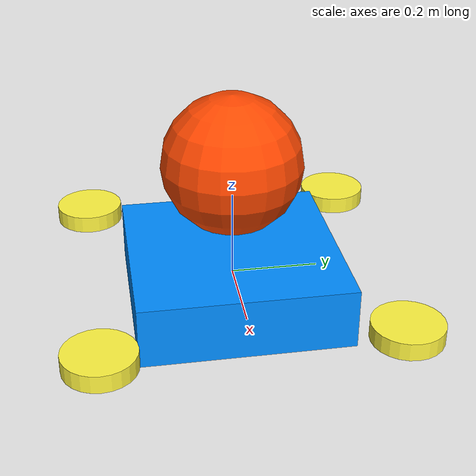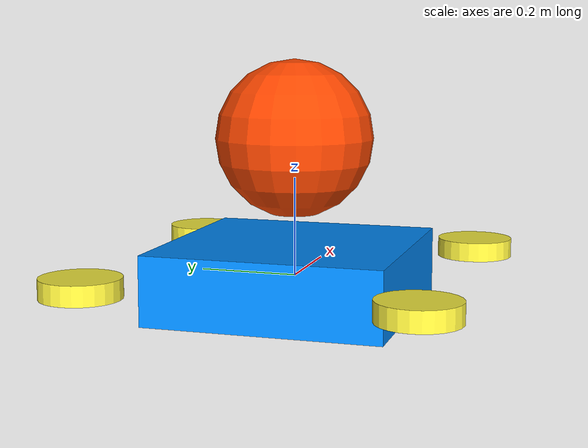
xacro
<?xml version="1.0"?>
<robot xmlns:xacro="http://www.ros.org/wiki/xacro" name="iris">
  <xacro:arg name="use_sim_time" default="true"/>
  <xacro:arg name="namespace" default="drone"/>

  <link name="base_link">
    <inertial>
      <origin xyz="0 0 0" rpy="0 0 0"/>
      <mass value="1.5"/>
      <inertia
        ixx="0.029125"
        ixy="0.0"
        ixz="0.0"
        iyy="0.029125"
        iyz="0.0"
        izz="0.055225"/>
    </inertial>
    <visual>
      <origin xyz="0 0 0" rpy="0 0 0"/>
      <geometry>
        <box size="0.48 0.48 0.14"/>
      </geometry>
      <material name="carbon">
        <color rgba="0.0 0.55 1.0 1.0"/>
      </material>
    </visual>
    <collision>
      <origin xyz="0 0 0" rpy="0 0 0"/>
      <geometry>
        <box size="0.48 0.48 0.14"/>
      </geometry>
    </collision>
  </link>

  <link name="front_left_motor">
    <visual>
      <origin xyz="0.32 0.32 0.02" rpy="0 0 0"/>
      <geometry>
        <cylinder radius="0.08" length="0.04"/>
      </geometry>
      <material name="motor">
        <color rgba="1.0 0.96 0.25 1.0"/>
      </material>
    </visual>
  </link>
  <joint name="front_left_motor_joint" type="fixed">
    <parent link="base_link"/>
    <child link="front_left_motor"/>
    <origin xyz="0 0 0" rpy="0 0 0"/>
  </joint>

  <link name="front_right_motor">
    <visual>
      <origin xyz="0.32 -0.32 0.02" rpy="0 0 0"/>
      <geometry>
        <cylinder radius="0.08" length="0.04"/>
      </geometry>
      <material name="motor">
        <color rgba="1.0 0.96 0.25 1.0"/>
      </material>
    </visual>
  </link>
  <joint name="front_right_motor_joint" type="fixed">
    <parent link="base_link"/>
    <child link="front_right_motor"/>
    <origin xyz="0 0 0" rpy="0 0 0"/>
  </joint>

  <link name="rear_left_motor">
    <visual>
      <origin xyz="-0.32 0.32 0.02" rpy="0 0 0"/>
      <geometry>
        <cylinder radius="0.08" length="0.04"/>
      </geometry>
      <material name="motor">
        <color rgba="1.0 0.96 0.25 1.0"/>
      </material>
    </visual>
  </link>
  <joint name="rear_left_motor_joint" type="fixed">
    <parent link="base_link"/>
    <child link="rear_left_motor"/>
    <origin xyz="0 0 0" rpy="0 0 0"/>
  </joint>

  <link name="rear_right_motor">
    <visual>
      <origin xyz="-0.32 -0.32 0.02" rpy="0 0 0"/>
      <geometry>
        <cylinder radius="0.08" length="0.04"/>
      </geometry>
      <material name="motor">
        <color rgba="1.0 0.96 0.25 1.0"/>
      </material>
    </visual>
  </link>
  <joint name="rear_right_motor_joint" type="fixed">
    <parent link="base_link"/>
    <child link="rear_right_motor"/>
    <origin xyz="0 0 0" rpy="0 0 0"/>
  </joint>

  <link name="visibility_beacon">
    <visual>
      <origin xyz="0 0 0.28" rpy="0 0 0"/>
      <geometry>
        <sphere radius="0.16"/>
      </geometry>
      <material name="beacon_orange">
        <color rgba="1.0 0.28 0.0 1.0"/>
      </material>
    </visual>
  </link>
  <joint name="visibility_beacon_joint" type="fixed">
    <parent link="base_link"/>
    <child link="visibility_beacon"/>
    <origin xyz="0 0 0" rpy="0 0 0"/>
  </joint>
</robot>
